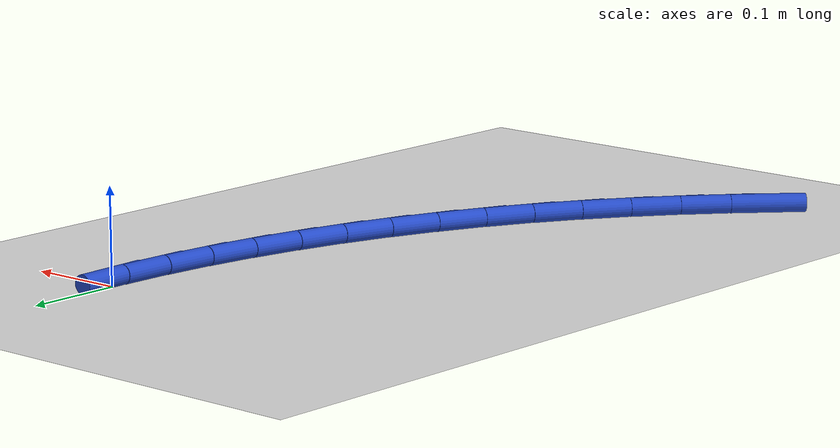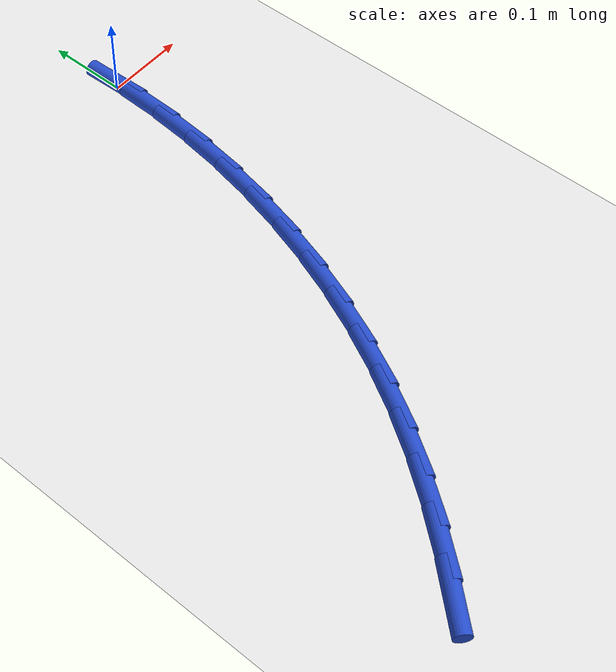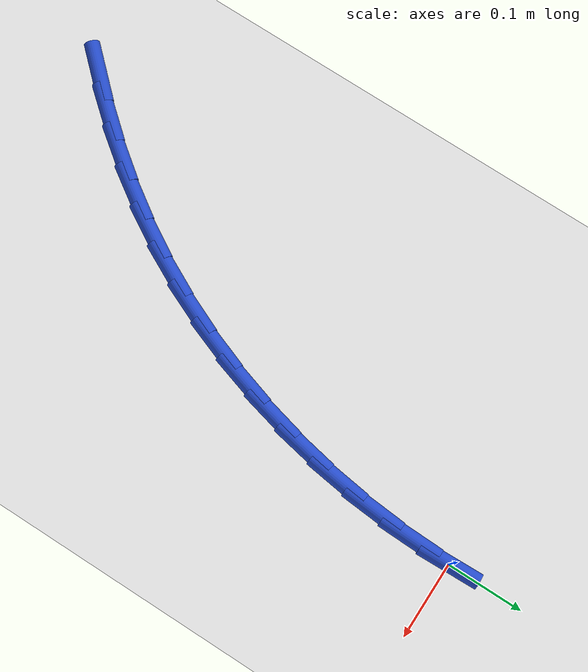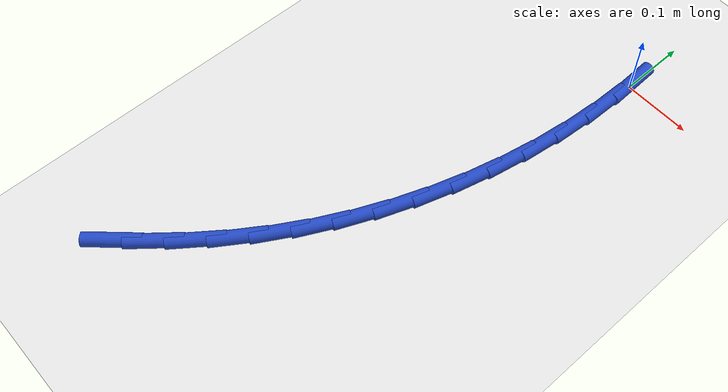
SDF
<sdf version="1.6">
 <world name="default">
  <model name="ground_plane">
   <static>1</static>
   <link name="link">
    <collision name="collision">
     <geometry><plane><normal>0 0 1</normal><size>100 100</size></plane></geometry>
     <surface><friction><ode><mu>100</mu><mu2>50</mu2></ode></friction></surface>
    </collision>
    <visual name="visual">
     <cast_shadows>0</cast_shadows>
     <geometry><plane><normal>0 0 1</normal><size>100 100</size></plane></geometry>
     <material>
      <script><uri>file://media/materials/scripts/gazebo.material</uri><name>Gazebo/WhiteGlow</name></script>
     </material>
    </visual>
   </link>
  </model>
  <model name="line">
   <link name="link_0">
    <pose>1.3877787807814457e-17 5.551115123125783e-17 0.01 0 1.57 -1.541053620481255</pose>
    <collision name="collision">
     <geometry><cylinder><radius>0.01</radius><length>0.08</length></cylinder></geometry>
    </collision>
    <visual name="visual">
     <material>
      <script><name>Gazebo/Blue</name><uri>file://media/materials/scripts/gazebo.material</uri></script>
     </material>
     <geometry><cylinder><radius>0.01</radius><length>0.08</length></cylinder></geometry>
    </visual>
   </link>
   <link name="link_106">
    <pose>-0.2792920861131563 -0.6854204687145709 0.01 0 1.57 0.8160902592075765</pose>
    <collision name="collision">
     <geometry><cylinder><radius>0.01</radius><length>0.08</length></cylinder></geometry>
    </collision>
    <visual name="visual">
     <material>
      <script><name>Gazebo/Blue</name><uri>file://media/materials/scripts/gazebo.material</uri></script>
     </material>
     <geometry><cylinder><radius>0.01</radius><length>0.08</length></cylinder></geometry>
    </visual>
   </link>
   <link name="link_107">
    <pose>-0.24231623923802262 -0.6461022618823834 0.01 0 1.57 0.8663790015467808</pose>
    <collision name="collision">
     <geometry><cylinder><radius>0.01</radius><length>0.08</length></cylinder></geometry>
    </collision>
    <visual name="visual">
     <material>
      <script><name>Gazebo/Blue</name><uri>file://media/materials/scripts/gazebo.material</uri></script>
     </material>
     <geometry><cylinder><radius>0.01</radius><length>0.08</length></cylinder></geometry>
    </visual>
   </link>
   <link name="link_108">
    <pose>-0.20748937175563437 -0.6051231043839292 0.01 0 1.57 0.9202717551286067</pose>
    <collision name="collision">
     <geometry><cylinder><radius>0.01</radius><length>0.08</length></cylinder></geometry>
    </collision>
    <visual name="visual">
     <material>
      <script><name>Gazebo/Blue</name><uri>file://media/materials/scripts/gazebo.material</uri></script>
     </material>
     <geometry><cylinder><radius>0.01</radius><length>0.08</length></cylinder></geometry>
    </visual>
   </link>
   <link name="link_109">
    <pose>-0.17499131824401926 -0.5624205189341299 0.01 0 1.57 0.977669638779904</pose>
    <collision name="collision">
     <geometry><cylinder><radius>0.01</radius><length>0.08</length></cylinder></geometry>
    </collision>
    <visual name="visual">
     <material>
      <script><name>Gazebo/Blue</name><uri>file://media/materials/scripts/gazebo.material</uri></script>
     </material>
     <geometry><cylinder><radius>0.01</radius><length>0.08</length></cylinder></geometry>
    </visual>
   </link>
   <link name="link_110">
    <pose>-0.1450019132812035 -0.5179320282479056 0.01 0 1.57 1.0381828846331107</pose>
    <collision name="collision">
     <geometry><cylinder><radius>0.01</radius><length>0.08</length></cylinder></geometry>
    </collision>
    <visual name="visual">
     <material>
      <script><name>Gazebo/Blue</name><uri>file://media/materials/scripts/gazebo.material</uri></script>
     </material>
     <geometry><cylinder><radius>0.01</radius><length>0.08</length></cylinder></geometry>
    </visual>
   </link>
   <link name="link_111">
    <pose>-0.11769524781616855 -0.4716050263689286 0.01 0 1.57 1.0989372383504532</pose>
    <collision name="collision">
     <geometry><cylinder><radius>0.01</radius><length>0.08</length></cylinder></geometry>
    </collision>
    <visual name="visual">
     <material>
      <script><name>Gazebo/Blue</name><uri>file://media/materials/scripts/gazebo.material</uri></script>
     </material>
     <geometry><cylinder><radius>0.01</radius><length>0.08</length></cylinder></geometry>
    </visual>
   </link>
   <link name="link_112">
    <pose>-0.0931621947863526 -0.42352993056599114 0.01 0 1.57 1.1580422806120128</pose>
    <collision name="collision">
     <geometry><cylinder><radius>0.01</radius><length>0.08</length></cylinder></geometry>
    </collision>
    <visual name="visual">
     <material>
      <script><name>Gazebo/Blue</name><uri>file://media/materials/scripts/gazebo.material</uri></script>
     </material>
     <geometry><cylinder><radius>0.01</radius><length>0.08</length></cylinder></geometry>
    </visual>
   </link>
   <link name="link_113">
    <pose>-0.07143093080413072 -0.3739049115911506 0.01 0 1.57 1.2156848786498229</pose>
    <collision name="collision">
     <geometry><cylinder><radius>0.01</radius><length>0.08</length></cylinder></geometry>
    </collision>
    <visual name="visual">
     <material>
      <script><name>Gazebo/Blue</name><uri>file://media/materials/scripts/gazebo.material</uri></script>
     </material>
     <geometry><cylinder><radius>0.01</radius><length>0.08</length></cylinder></geometry>
    </visual>
   </link>
   <link name="link_114">
    <pose>-0.05252809662829778 -0.32293077980209717 0.01 0 1.57 1.272120537545645</pose>
    <collision name="collision">
     <geometry><cylinder><radius>0.01</radius><length>0.08</length></cylinder></geometry>
    </collision>
    <visual name="visual">
     <material>
      <script><name>Gazebo/Blue</name><uri>file://media/materials/scripts/gazebo.material</uri></script>
     </material>
     <geometry><cylinder><radius>0.01</radius><length>0.08</length></cylinder></geometry>
    </visual>
   </link>
   <link name="link_115">
    <pose>-0.036480333017648796 -0.27080834555652117 0.01 0 1.57 1.3276172839578182</pose>
    <collision name="collision">
     <geometry><cylinder><radius>0.01</radius><length>0.08</length></cylinder></geometry>
    </collision>
    <visual name="visual">
     <material>
      <script><name>Gazebo/Blue</name><uri>file://media/materials/scripts/gazebo.material</uri></script>
     </material>
     <geometry><cylinder><radius>0.01</radius><length>0.08</length></cylinder></geometry>
    </visual>
   </link>
   <link name="link_116">
    <pose>-0.02331428073097942 -0.21773841921211506 0.01 0 1.57 1.3824507824934542</pose>
    <collision name="collision">
     <geometry><cylinder><radius>0.01</radius><length>0.08</length></cylinder></geometry>
    </collision>
    <visual name="visual">
     <material>
      <script><name>Gazebo/Blue</name><uri>file://media/materials/scripts/gazebo.material</uri></script>
     </material>
     <geometry><cylinder><radius>0.01</radius><length>0.08</length></cylinder></geometry>
    </visual>
   </link>
   <link name="link_117">
    <pose>-0.013056580527084635 -0.16392181112656895 0.01 0 1.57 1.436900770643213</pose>
    <collision name="collision">
     <geometry><cylinder><radius>0.01</radius><length>0.08</length></cylinder></geometry>
    </collision>
    <visual name="visual">
     <material>
      <script><name>Gazebo/Blue</name><uri>file://media/materials/scripts/gazebo.material</uri></script>
     </material>
     <geometry><cylinder><radius>0.01</radius><length>0.08</length></cylinder></geometry>
    </visual>
   </link>
   <link name="link_118">
    <pose>-0.005733873164759666 -0.10955933165757387 0.01 0 1.57 1.4912484058337718</pose>
    <collision name="collision">
     <geometry><cylinder><radius>0.01</radius><length>0.08</length></cylinder></geometry>
    </collision>
    <visual name="visual">
     <material>
      <script><name>Gazebo/Blue</name><uri>file://media/materials/scripts/gazebo.material</uri></script>
     </material>
     <geometry><cylinder><radius>0.01</radius><length>0.08</length></cylinder></geometry>
    </visual>
   </link>
   <link name="link_119">
    <pose>-0.0013727994027996574 -0.05485179116282002 0.01 0 1.57 1.5457741196154722</pose>
    <collision name="collision">
     <geometry><cylinder><radius>0.01</radius><length>0.08</length></cylinder></geometry>
    </collision>
    <visual name="visual">
     <material>
      <script><name>Gazebo/Blue</name><uri>file://media/materials/scripts/gazebo.material</uri></script>
     </material>
     <geometry><cylinder><radius>0.01</radius><length>0.08</length></cylinder></geometry>
    </visual>
   </link>
  </model>
 </world>
</sdf>
